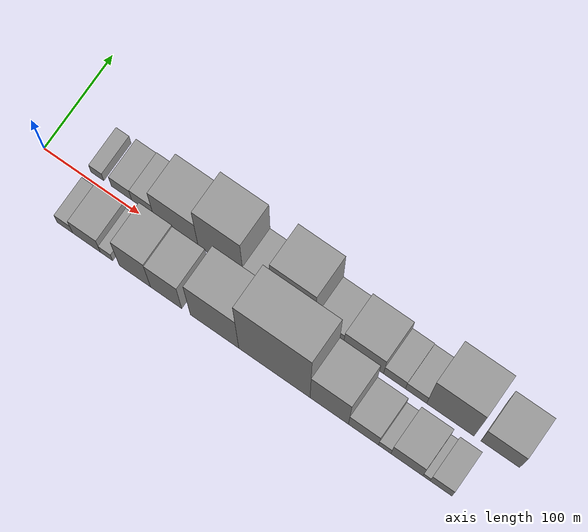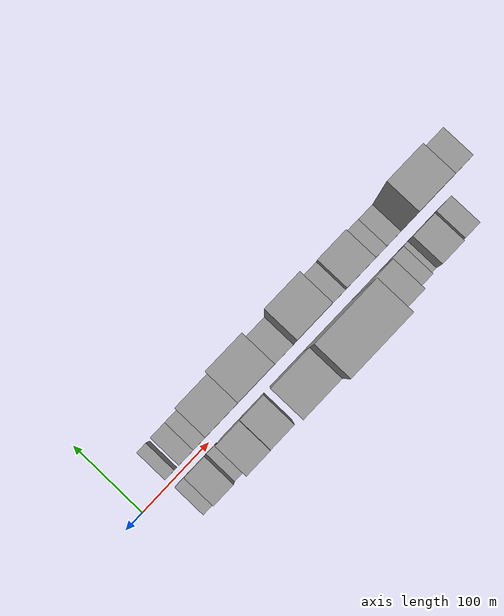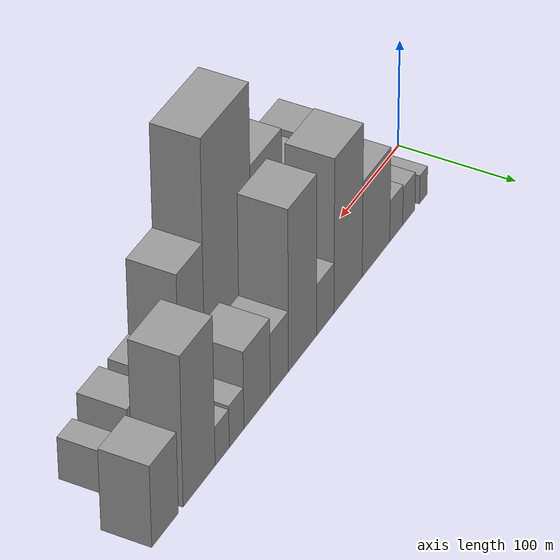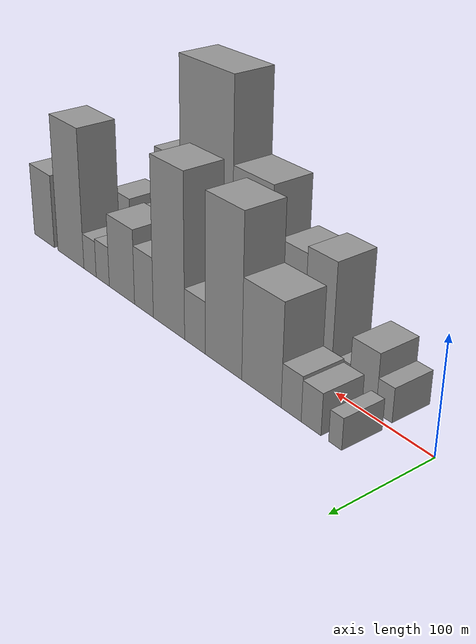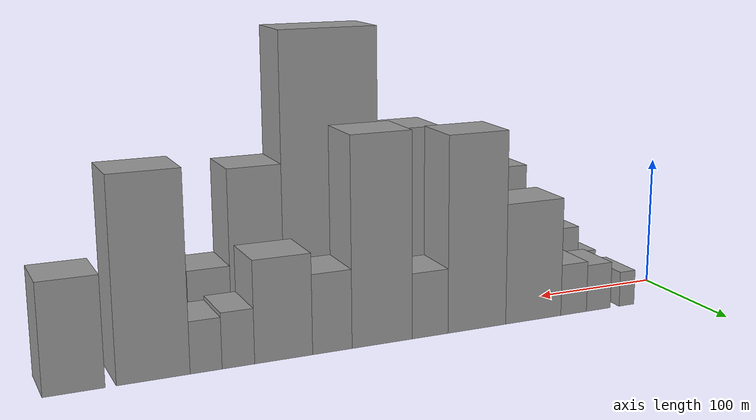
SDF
<sdf version="1.6">
 <world name="default">
  <scene>
   <sky><clouds><speed>12</speed></clouds></sky>
   <ambient>0.4 0.4 0.4 1</ambient>
   <background>0.7 0.7 0.7 1</background>
   <shadows>1</shadows>
  </scene>
  <gravity>0 0 -9.8066</gravity>
  <magnetic_field>6e-06 2.3e-05 -4.2e-05</magnetic_field>
  <physics default="0" name="default_physics" type="ode">
   <ode>
    <solver>
     <type>quick</type>
     <iters>10</iters>
     <sor>1.0</sor>
     <use_dynamic_moi_rescaling>0</use_dynamic_moi_rescaling>
    </solver>
    <constraints>
     <cfm>0</cfm>
     <erp>0.2</erp>
     <contact_max_correcting_vel>100</contact_max_correcting_vel>
     <contact_surface_layer>0.001</contact_surface_layer>
    </constraints>
   </ode>
   <max_step_size>0.004</max_step_size>
   <real_time_factor>1</real_time_factor>
   <real_time_update_rate>250</real_time_update_rate>
  </physics>
  <light name="sun" type="directional">
   <pose>0 0 10 0 0 0</pose>
   <diffuse>0.8 0.8 0.8 1</diffuse>
   <specular>0.2 0.2 0.2 1</specular>
   <attenuation>
    <range>1000</range>
    <constant>0.9</constant>
    <linear>0.01</linear>
    <quadratic>0.001</quadratic>
   </attenuation>
   <direction>-0.5 0.1 -0.9</direction>
  </light>
  <model name="building_1">
   <static>1</static>
   <pose>51.7363 26.0000 0 0.000000 0.000000 1.570796</pose>
   <link name="link">
    <pose>0 0 13.50 0 0 0</pose>
    <collision name="collision"><geometry><box><size>40.0000 13.4727 27.0000</size></box></geometry></collision>
    <visual name="visual">
     <cast_shadows>0</cast_shadows>
     <geometry><box><size>40.0000 13.4727 27.0000</size></box></geometry>
     <material>
      <script>
       <uri>model://grey_wall/materials/scripts</uri>
       <uri>model://grey_wall/materials/textures</uri>
       <name>vrc/grey_wall</name>
      </script>
     </material>
    </visual>
   </link>
  </model>
  <model name="building_2">
   <static>1</static>
   <pose>77.1614 26.0000 0 0.000000 0.000000 1.570796</pose>
   <link name="link">
    <pose>0 0 18.00 0 0 0</pose>
    <collision name="collision"><geometry><box><size>40.0000 21.3774 36.0000</size></box></geometry></collision>
    <visual name="visual">
     <cast_shadows>0</cast_shadows>
     <geometry><box><size>40.0000 21.3774 36.0000</size></box></geometry>
     <material>
      <script>
       <uri>model://grey_wall/materials/scripts</uri>
       <uri>model://grey_wall/materials/textures</uri>
       <name>vrc/grey_wall</name>
      </script>
     </material>
    </visual>
   </link>
  </model>
  <model name="building_3">
   <static>1</static>
   <pose>99.0609 26.0000 0 0.000000 0.000000 1.570796</pose>
   <link name="link">
    <pose>0 0 19.50 0 0 0</pose>
    <collision name="collision"><geometry><box><size>40.0000 22.4216 39.0000</size></box></geometry></collision>
    <visual name="visual">
     <cast_shadows>0</cast_shadows>
     <geometry><box><size>40.0000 22.4216 39.0000</size></box></geometry>
     <material>
      <script>
       <uri>model://grey_wall/materials/scripts</uri>
       <uri>model://grey_wall/materials/textures</uri>
       <name>vrc/grey_wall</name>
      </script>
     </material>
    </visual>
   </link>
  </model>
  <model name="building_4">
   <static>1</static>
   <pose>133.7354 26.0000 0 0.000000 0.000000 1.570796</pose>
   <link name="link">
    <pose>0 0 45.00 0 0 0</pose>
    <collision name="collision"><geometry><box><size>40.0000 46.9274 90.0000</size></box></geometry></collision>
    <visual name="visual">
     <cast_shadows>0</cast_shadows>
     <geometry><box><size>40.0000 46.9274 90.0000</size></box></geometry>
     <material>
      <script>
       <uri>model://grey_wall/materials/scripts</uri>
       <uri>model://grey_wall/materials/textures</uri>
       <name>vrc/grey_wall</name>
      </script>
     </material>
    </visual>
   </link>
  </model>
  <model name="building_5">
   <static>1</static>
   <pose>180.7407 26.0000 0 0.000000 0.000000 1.570796</pose>
   <link name="link">
    <pose>0 0 72.00 0 0 0</pose>
    <collision name="collision"><geometry><box><size>40.0000 47.0832 144.0000</size></box></geometry></collision>
    <visual name="visual">
     <cast_shadows>0</cast_shadows>
     <geometry><box><size>40.0000 47.0832 144.0000</size></box></geometry>
     <material>
      <script>
       <uri>model://grey_wall/materials/scripts</uri>
       <uri>model://grey_wall/materials/textures</uri>
       <name>vrc/grey_wall</name>
      </script>
     </material>
    </visual>
   </link>
  </model>
  <model name="building_6">
   <static>1</static>
   <pose>218.4508 26.0000 0 0.000000 0.000000 1.570796</pose>
   <link name="link">
    <pose>0 0 24.00 0 0 0</pose>
    <collision name="collision"><geometry><box><size>40.0000 28.3369 48.0000</size></box></geometry></collision>
    <visual name="visual">
     <cast_shadows>0</cast_shadows>
     <geometry><box><size>40.0000 28.3369 48.0000</size></box></geometry>
     <material>
      <script>
       <uri>model://grey_wall/materials/scripts</uri>
       <uri>model://grey_wall/materials/textures</uri>
       <name>vrc/grey_wall</name>
      </script>
     </material>
    </visual>
   </link>
  </model>
  <model name="building_7">
   <static>1</static>
   <pose>255.4057 26.0000 0 0.000000 0.000000 1.570796</pose>
   <link name="link">
    <pose>0 0 75.00 0 0 0</pose>
    <collision name="collision"><geometry><box><size>40.0000 45.5729 150.0000</size></box></geometry></collision>
    <visual name="visual">
     <cast_shadows>0</cast_shadows>
     <geometry><box><size>40.0000 45.5729 150.0000</size></box></geometry>
     <material>
      <script>
       <uri>model://grey_wall/materials/scripts</uri>
       <uri>model://grey_wall/materials/textures</uri>
       <name>vrc/grey_wall</name>
      </script>
     </material>
    </visual>
   </link>
  </model>
  <model name="building_8">
   <static>1</static>
   <pose>292.6809 26.0000 0 0.000000 0.000000 1.570796</pose>
   <link name="link">
    <pose>0 0 28.50 0 0 0</pose>
    <collision name="collision"><geometry><box><size>40.0000 28.9775 57.0000</size></box></geometry></collision>
    <visual name="visual">
     <cast_shadows>0</cast_shadows>
     <geometry><box><size>40.0000 28.9775 57.0000</size></box></geometry>
     <material>
      <script>
       <uri>model://grey_wall/materials/scripts</uri>
       <uri>model://grey_wall/materials/textures</uri>
       <name>vrc/grey_wall</name>
      </script>
     </material>
    </visual>
   </link>
  </model>
  <model name="building_9">
   <static>1</static>
   <pose>327.7325 26.0000 0 0.000000 0.000000 1.570796</pose>
   <link name="link">
    <pose>0 0 36.00 0 0 0</pose>
    <collision name="collision"><geometry><box><size>40.0000 41.1257 72.0000</size></box></geometry></collision>
    <visual name="visual">
     <cast_shadows>0</cast_shadows>
     <geometry><box><size>40.0000 41.1257 72.0000</size></box></geometry>
     <material>
      <script>
       <uri>model://grey_wall/materials/scripts</uri>
       <uri>model://grey_wall/materials/textures</uri>
       <name>vrc/grey_wall</name>
      </script>
     </material>
    </visual>
   </link>
  </model>
  <model name="building_10">
   <static>1</static>
   <pose>359.5057 26.0000 0 0.000000 0.000000 1.570796</pose>
   <link name="link">
    <pose>0 0 19.50 0 0 0</pose>
    <collision name="collision"><geometry><box><size>40.0000 22.4209 39.0000</size></box></geometry></collision>
    <visual name="visual">
     <cast_shadows>0</cast_shadows>
     <geometry><box><size>40.0000 22.4209 39.0000</size></box></geometry>
     <material>
      <script>
       <uri>model://grey_wall/materials/scripts</uri>
       <uri>model://grey_wall/materials/textures</uri>
       <name>vrc/grey_wall</name>
      </script>
     </material>
    </visual>
   </link>
  </model>
  <model name="building_11">
   <static>1</static>
   <pose>381.4786 26.0000 0 0.000000 0.000000 1.570796</pose>
   <link name="link">
    <pose>0 0 18.00 0 0 0</pose>
    <collision name="collision"><geometry><box><size>40.0000 21.5248 36.0000</size></box></geometry></collision>
    <visual name="visual">
     <cast_shadows>0</cast_shadows>
     <geometry><box><size>40.0000 21.5248 36.0000</size></box></geometry>
     <material>
      <script>
       <uri>model://grey_wall/materials/scripts</uri>
       <uri>model://grey_wall/materials/textures</uri>
       <name>vrc/grey_wall</name>
      </script>
     </material>
    </visual>
   </link>
  </model>
  <model name="building_12">
   <static>1</static>
   <pose>416.2703 26.0000 0 0.000000 0.000000 1.570796</pose>
   <link name="link">
    <pose>0 0 69.00 0 0 0</pose>
    <collision name="collision"><geometry><box><size>40.0000 48.0588 138.0000</size></box></geometry></collision>
    <visual name="visual">
     <cast_shadows>0</cast_shadows>
     <geometry><box><size>40.0000 48.0588 138.0000</size></box></geometry>
     <material>
      <script>
       <uri>model://grey_wall/materials/scripts</uri>
       <uri>model://grey_wall/materials/textures</uri>
       <name>vrc/grey_wall</name>
      </script>
     </material>
    </visual>
   </link>
  </model>
  <model name="building_13">
   <static>1</static>
   <pose>466.8301 26.0000 0 0.000000 0.000000 1.570796</pose>
   <link name="link">
    <pose>0 0 37.50 0 0 0</pose>
    <collision name="collision"><geometry><box><size>40.0000 39.0607 75.0000</size></box></geometry></collision>
    <visual name="visual">
     <cast_shadows>0</cast_shadows>
     <geometry><box><size>40.0000 39.0607 75.0000</size></box></geometry>
     <material>
      <script>
       <uri>model://grey_wall/materials/scripts</uri>
       <uri>model://grey_wall/materials/textures</uri>
       <name>vrc/grey_wall</name>
      </script>
     </material>
    </visual>
   </link>
  </model>
  <model name="building_14">
   <static>1</static>
   <pose>55.1821 -26.0000 0 0.000000 0.000000 1.570796</pose>
   <link name="link">
    <pose>0 0 15.00 0 0 0</pose>
    <collision name="collision"><geometry><box><size>40.0000 16.3642 30.0000</size></box></geometry></collision>
    <visual name="visual">
     <cast_shadows>0</cast_shadows>
     <geometry><box><size>40.0000 16.3642 30.0000</size></box></geometry>
     <material>
      <script>
       <uri>model://grey_wall/materials/scripts</uri>
       <uri>model://grey_wall/materials/textures</uri>
       <name>vrc/grey_wall</name>
      </script>
     </material>
    </visual>
   </link>
  </model>
  <model name="building_15">
   <static>1</static>
   <pose>77.8961 -26.0000 0 0.000000 0.000000 1.570796</pose>
   <link name="link">
    <pose>0 0 25.50 0 0 0</pose>
    <collision name="collision"><geometry><box><size>40.0000 29.0638 51.0000</size></box></geometry></collision>
    <visual name="visual">
     <cast_shadows>0</cast_shadows>
     <geometry><box><size>40.0000 29.0638 51.0000</size></box></geometry>
     <material>
      <script>
       <uri>model://grey_wall/materials/scripts</uri>
       <uri>model://grey_wall/materials/textures</uri>
       <name>vrc/grey_wall</name>
      </script>
     </material>
    </visual>
   </link>
  </model>
  <model name="building_16">
   <static>1</static>
   <pose>98.8204 -26.0000 0 0.000000 0.000000 1.570796</pose>
   <link name="link">
    <pose>0 0 13.50 0 0 0</pose>
    <collision name="collision"><geometry><box><size>40.0000 12.7849 27.0000</size></box></geometry></collision>
    <visual name="visual">
     <cast_shadows>0</cast_shadows>
     <geometry><box><size>40.0000 12.7849 27.0000</size></box></geometry>
     <material>
      <script>
       <uri>model://grey_wall/materials/scripts</uri>
       <uri>model://grey_wall/materials/textures</uri>
       <name>vrc/grey_wall</name>
      </script>
     </material>
    </visual>
   </link>
  </model>
  <model name="building_17">
   <static>1</static>
   <pose>128.4524 -26.0000 0 0.000000 0.000000 1.570796</pose>
   <link name="link">
    <pose>0 0 52.50 0 0 0</pose>
    <collision name="collision"><geometry><box><size>40.0000 32.4790 105.0000</size></box></geometry></collision>
    <visual name="visual">
     <cast_shadows>0</cast_shadows>
     <geometry><box><size>40.0000 32.4790 105.0000</size></box></geometry>
     <material>
      <script>
       <uri>model://grey_wall/materials/scripts</uri>
       <uri>model://grey_wall/materials/textures</uri>
       <name>vrc/grey_wall</name>
      </script>
     </material>
    </visual>
   </link>
  </model>
  <model name="building_18">
   <static>1</static>
   <pose>160.8812 -26.0000 0 0.000000 0.000000 1.570796</pose>
   <link name="link">
    <pose>0 0 49.50 0 0 0</pose>
    <collision name="collision"><geometry><box><size>40.0000 32.3787 99.0000</size></box></geometry></collision>
    <visual name="visual">
     <cast_shadows>0</cast_shadows>
     <geometry><box><size>40.0000 32.3787 99.0000</size></box></geometry>
     <material>
      <script>
       <uri>model://grey_wall/materials/scripts</uri>
       <uri>model://grey_wall/materials/textures</uri>
       <name>vrc/grey_wall</name>
      </script>
     </material>
    </visual>
   </link>
  </model>
  <model name="building_19">
   <static>1</static>
   <pose>211.0666 -26.0000 0 0.000000 0.000000 1.570796</pose>
   <link name="link">
    <pose>0 0 70.50 0 0 0</pose>
    <collision name="collision"><geometry><box><size>40.0000 49.9922 141.0000</size></box></geometry></collision>
    <visual name="visual">
     <cast_shadows>0</cast_shadows>
     <geometry><box><size>40.0000 49.9922 141.0000</size></box></geometry>
     <material>
      <script>
       <uri>model://grey_wall/materials/scripts</uri>
       <uri>model://grey_wall/materials/textures</uri>
       <name>vrc/grey_wall</name>
      </script>
     </material>
    </visual>
   </link>
  </model>
  <model name="building_20">
   <static>1</static>
   <pose>272.6296 -26.0000 0 0.000000 0.000000 1.570796</pose>
   <link name="link">
    <pose>0 0 108.00 0 0 0</pose>
    <collision name="collision"><geometry><box><size>40.0000 73.1338 216.0000</size></box></geometry></collision>
    <visual name="visual">
     <cast_shadows>0</cast_shadows>
     <geometry><box><size>40.0000 73.1338 216.0000</size></box></geometry>
     <material>
      <script>
       <uri>model://grey_wall/materials/scripts</uri>
       <uri>model://grey_wall/materials/textures</uri>
       <name>vrc/grey_wall</name>
      </script>
     </material>
    </visual>
   </link>
  </model>
  <model name="building_21">
   <static>1</static>
   <pose>328.7827 -26.0000 0 0.000000 0.000000 1.570796</pose>
   <link name="link">
    <pose>0 0 61.50 0 0 0</pose>
    <collision name="collision"><geometry><box><size>40.0000 39.1723 123.0000</size></box></geometry></collision>
    <visual name="visual">
     <cast_shadows>0</cast_shadows>
     <geometry><box><size>40.0000 39.1723 123.0000</size></box></geometry>
     <material>
      <script>
       <uri>model://grey_wall/materials/scripts</uri>
       <uri>model://grey_wall/materials/textures</uri>
       <name>vrc/grey_wall</name>
      </script>
     </material>
    </visual>
   </link>
  </model>
  <model name="building_22">
   <static>1</static>
   <pose>363.6722 -26.0000 0 0.000000 0.000000 1.570796</pose>
   <link name="link">
    <pose>0 0 27.00 0 0 0</pose>
    <collision name="collision"><geometry><box><size>40.0000 30.6067 54.0000</size></box></geometry></collision>
    <visual name="visual">
     <cast_shadows>0</cast_shadows>
     <geometry><box><size>40.0000 30.6067 54.0000</size></box></geometry>
     <material>
      <script>
       <uri>model://grey_wall/materials/scripts</uri>
       <uri>model://grey_wall/materials/textures</uri>
       <name>vrc/grey_wall</name>
      </script>
     </material>
    </visual>
   </link>
  </model>
  <model name="building_23">
   <static>1</static>
   <pose>385.3361 -26.0000 0 0.000000 0.000000 1.570796</pose>
   <link name="link">
    <pose>0 0 13.50 0 0 0</pose>
    <collision name="collision"><geometry><box><size>40.0000 12.7210 27.0000</size></box></geometry></collision>
    <visual name="visual">
     <cast_shadows>0</cast_shadows>
     <geometry><box><size>40.0000 12.7210 27.0000</size></box></geometry>
     <material>
      <script>
       <uri>model://grey_wall/materials/scripts</uri>
       <uri>model://grey_wall/materials/textures</uri>
       <name>vrc/grey_wall</name>
      </script>
     </material>
    </visual>
   </link>
  </model>
  <model name="building_24">
   <static>1</static>
   <pose>407.8438 -26.0000 0 0.000000 0.000000 1.570796</pose>
   <link name="link">
    <pose>0 0 28.50 0 0 0</pose>
    <collision name="collision"><geometry><box><size>40.0000 32.2945 57.0000</size></box></geometry></collision>
    <visual name="visual">
     <cast_shadows>0</cast_shadows>
     <geometry><box><size>40.0000 32.2945 57.0000</size></box></geometry>
     <material>
      <script>
       <uri>model://grey_wall/materials/scripts</uri>
       <uri>model://grey_wall/materials/textures</uri>
       <name>vrc/grey_wall</name>
      </script>
     </material>
    </visual>
   </link>
  </model>
  <model name="building_25">
   <static>1</static>
   <pose>427.6370 -26.0000 0 0.000000 0.000000 1.570796</pose>
   <link name="link">
    <pose>0 0 9.00 0 0 0</pose>
    <collision name="collision"><geometry><box><size>40.0000 7.2918 18.0000</size></box></geometry></collision>
    <visual name="visual">
     <cast_shadows>0</cast_shadows>
     <geometry><box><size>40.0000 7.2918 18.0000</size></box></geometry>
     <material>
      <script>
       <uri>model://grey_wall/materials/scripts</uri>
       <uri>model://grey_wall/materials/textures</uri>
       <name>vrc/grey_wall</name>
      </script>
     </material>
    </visual>
   </link>
  </model>
  <model name="building_26">
   <static>1</static>
   <pose>442.3390 -26.0000 0 0.000000 0.000000 1.570796</pose>
   <link name="link">
    <pose>0 0 19.50 0 0 0</pose>
    <collision name="collision"><geometry><box><size>40.0000 22.1123 39.0000</size></box></geometry></collision>
    <visual name="visual">
     <cast_shadows>0</cast_shadows>
     <geometry><box><size>40.0000 22.1123 39.0000</size></box></geometry>
     <material>
      <script>
       <uri>model://grey_wall/materials/scripts</uri>
       <uri>model://grey_wall/materials/textures</uri>
       <name>vrc/grey_wall</name>
      </script>
     </material>
    </visual>
   </link>
  </model>
 </world>
</sdf>
